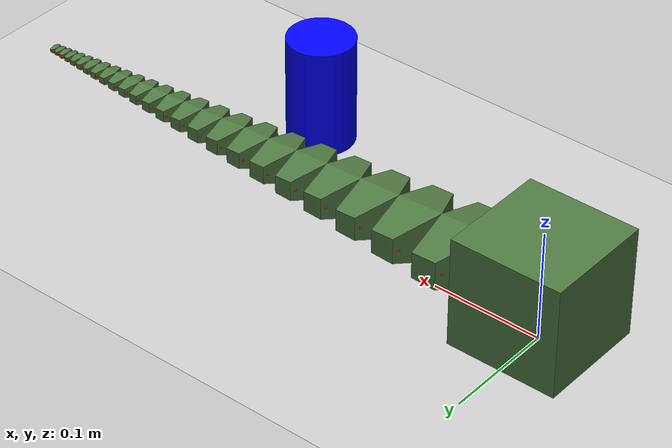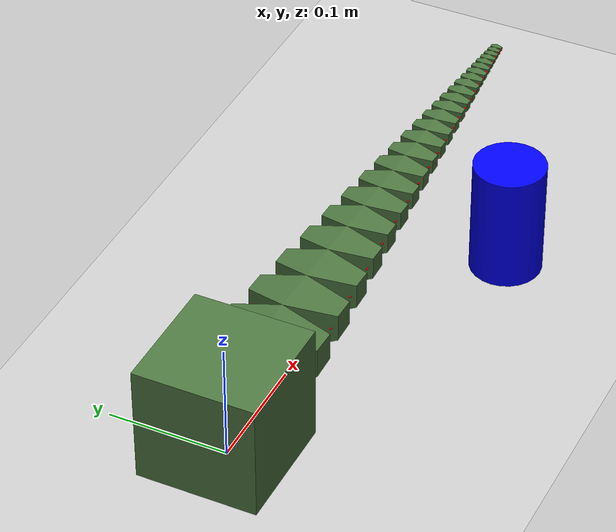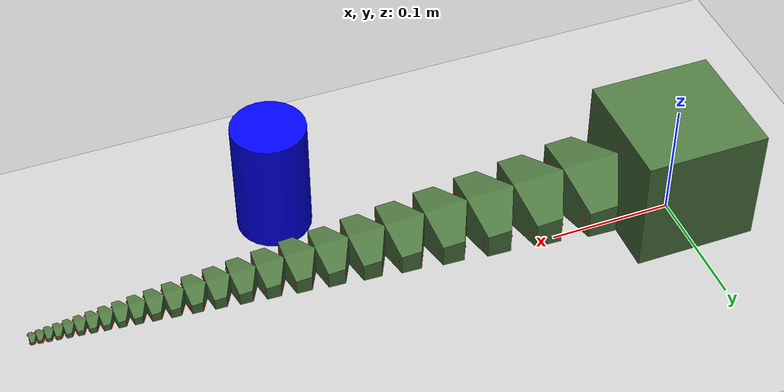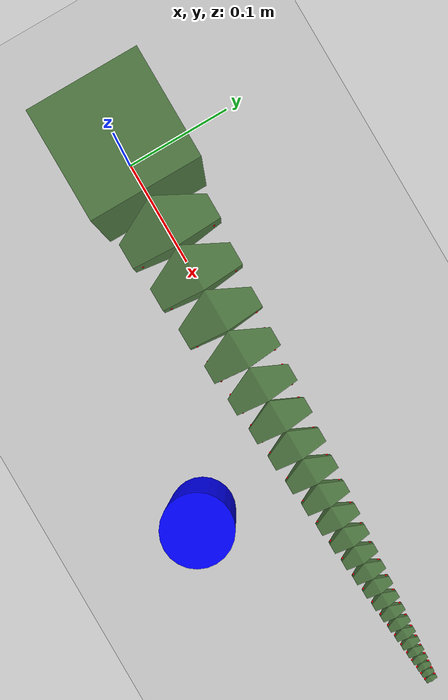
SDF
<?xml version="1.0" ?>
<sdf version="1.9">
  <world name="spirob">
    <physics name="1ms" type="dart">
      <max_step_size>0.001</max_step_size>
      <real_time_factor>1.0</real_time_factor>
      <real_time_update_rate>1000</real_time_update_rate>
      <max_contacts>20</max_contacts>
      <dart>
        <solver>
          <type>pgs</type>
        </solver>
        <collision_detector>bullet</collision_detector>
      </dart>
    </physics>

    <plugin name="gz::sim::systems::Physics"
      filename="gz-sim-physics-system">
    </plugin>
    <plugin name="gz::sim::systems::Sensors"
      filename="gz-sim-sensors-system">
      <render_engine>ogre2</render_engine>
    </plugin>
    <plugin name="gz::sim::systems::UserCommands"
      filename="gz-sim-user-commands-system">
    </plugin>
    <plugin name="gz::sim::systems::SceneBroadcaster"
      filename="gz-sim-scene-broadcaster-system">
    </plugin>
    <plugin name="gz::sim::systems::Imu"
      filename="gz-sim-imu-system">
    </plugin>

    <scene>
      <ambient>1.0 1.0 1.0</ambient>
      <background>0.8 0.8 0.8</background>
      <sky></sky>
    </scene>

    <light type="directional" name="sun">
      <cast_shadows>true</cast_shadows>
      <pose>0 0 10 0 0 0</pose>
      <diffuse>0.8 0.8 0.8 1</diffuse>
      <specular>0.8 0.8 0.8 1</specular>
      <attenuation>
        <range>1000</range>
        <constant>0.9</constant>
        <linear>0.01</linear>
        <quadratic>0.001</quadratic>
      </attenuation>
      <direction>-0.5 0.1 -0.9</direction>
    </light>

    <model name="ground_plane">
      <static>true</static>
      <link name="link">
        <collision name="collision">
          <geometry>
            <plane>
              <normal>0 0 1</normal>
              <size>100 100</size>
            </plane>
          </geometry>
        </collision>
        <visual name="visual">
          <geometry>
            <plane>
              <normal>0 0 1</normal>
              <size>100 100</size>
            </plane>
          </geometry>
          <material>
            <ambient>0.8 0.8 0.8</ambient>
            <diffuse>0.8 0.8 0.8</diffuse>
            <specular>0.1 0.1 0.1</specular>
          </material>
        </visual>
      </link>
    </model>

    <model name="arm">
      <static>0</static>
      <self_collide>1</self_collide>
      <include merge="true">
        <uri>model://spirob_arm</uri>
        <pose degrees="true">0 0 0.05 0 0 0</pose>
      </include>
      <joint name="arm_world" type="fixed">
        <parent>world</parent>
        <child>base_link</child>
      </joint>

    </model>

    <!-- cylinder target -->
    <model name="target">
      <static>true</static>
      <pose>0.3 -0.1 0.05 0 0 0</pose>
      <link name="base_link">
        <inertial auto="true" />
        <collision name="collision">
          <density>2000</density>
          <geometry>
            <cylinder>
              <radius>0.03</radius>
              <length>0.1</length>
            </cylinder>
          </geometry>
          <surface>
            <friction>
              <ode>
                <mu>1.0</mu>
                <mu2>1.0</mu2>
              </ode>
            </friction>
          </surface>
        </collision>
        <visual name="visual">
          <geometry>
            <cylinder>
              <radius>0.03</radius>
              <length>0.1</length>
            </cylinder>
          </geometry>
          <material>
            <ambient>0 0 1</ambient>
            <diffuse>0 0 1</diffuse>
            <specular>0.1 0.1 0.1</specular>
          </material>
        </visual>
      </link>
    </model>

  </world>
</sdf>
